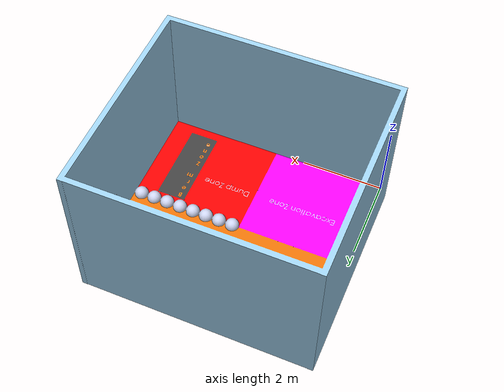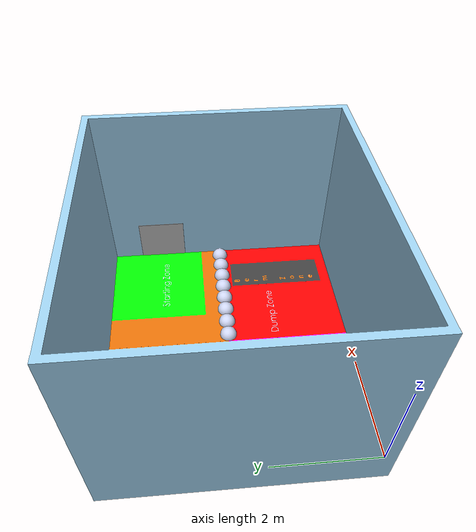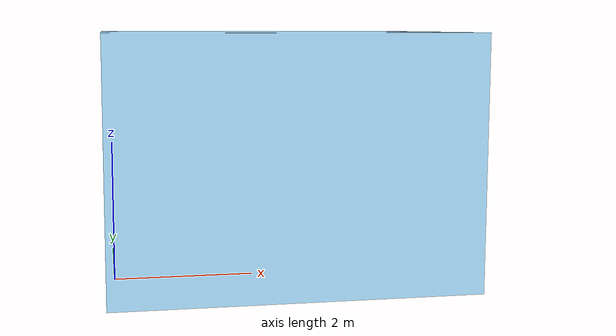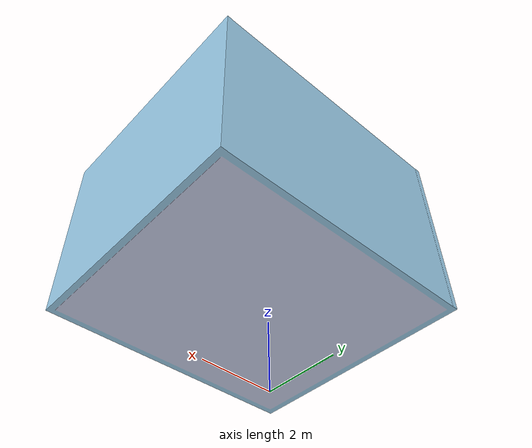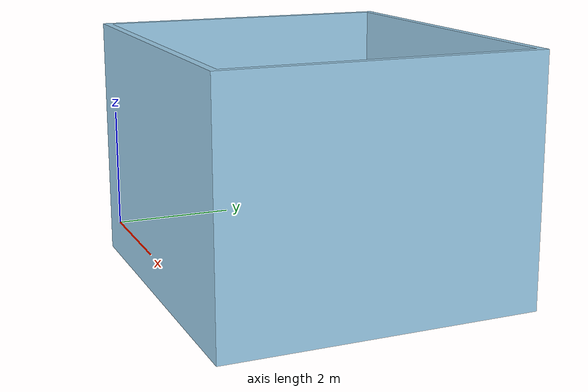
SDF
<?xml version="1.0" ?>
<sdf version='1.7'>
  <model name='COSMIC_field'>
    <static>true</static>
    <pose>0 0 0 0 0 0</pose>
      <link name='field'>
        <collision name="collision">
          <geometry>
            <mesh>
              <uri>meshes/Cosmic_Arena.stl</uri>
            </mesh>
          </geometry>
          <pose>0 0 0 0 0 0</pose>
        </collision>
        <visual name="visual">
          <geometry>
            <mesh>
              <uri>meshes/Cosmic_Arena.dae</uri>
            </mesh>
          </geometry>
          <pose>0 0 0 0 0 0</pose>
        </visual>
      </link>

      <!-- We chose bottom_left to be (0, 0) with x increasing to the right and y increasing up. -->
      <frame name="bottom_left">
        <pose>0 0 0 0 0 0</pose>
      </frame>

      <!-- Tags in the starting zone. This assumes that we are placing 2 tags on the wall. -->
      <include>
        <uri>/src/gazebo/ros_gz_description/models/Apriltag36_11_00001</uri>
        <pose relative_to='bottom_left'>5.48 3.7525 0.4 1.57 0 -1.57</pose>
        <name>AprilTag_1</name>
      </include>

      <include>
        <uri>/src/gazebo/ros_gz_description/models/Apriltag36_11_00002</uri>
        <pose relative_to='bottom_left'>5.48 3.9684 0.4 1.57 0 -1.57</pose>
        <name>AprilTag_2</name>
      </include>

  </model>
</sdf>

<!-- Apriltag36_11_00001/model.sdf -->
<sdf version='1.6'>
  <model name='Apriltag36_11_00001'>
    <link name='main'>
    <pose frame=''>0 0 0 0 0 0</pose>
      <visual name='main_Visual'>
        <geometry>
          <mesh>
            <uri>materials/meshes/apriltag.dae</uri>
          </mesh>
        </geometry>
      </visual>
     </link>
    <static>1</static>
  </model>
</sdf>

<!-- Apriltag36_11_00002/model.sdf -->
<sdf version='1.6'>
  <model name='Apriltag36_11_00002'>
    <link name='main'>
    <pose frame=''>0 0 0 0 0 0</pose>
      <visual name='main_Visual'>
        <geometry>
          <box>
          <size>0.17 0.17 0.01</size>
          </box>
        </geometry>
           <material>
          <script>
            <uri>model://Apriltag36_11_00002/materials/scripts</uri>
            <uri>model://Apriltag36_11_00002/materials/textures</uri>
            <name>Apriltag36_11_00002</name>
          </script>
        </material>
      </visual>
     </link>
    <static>1</static>
  </model>
</sdf>
